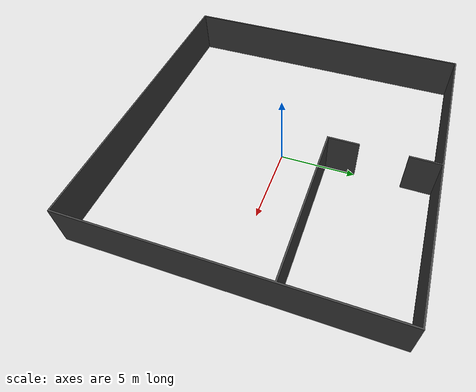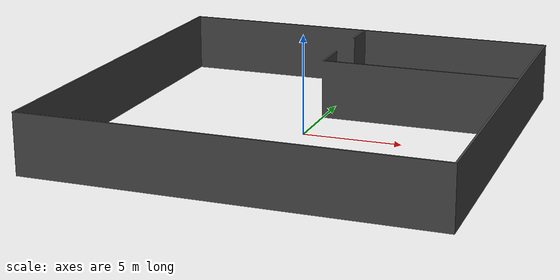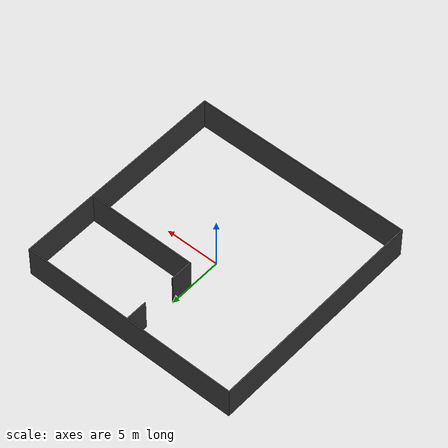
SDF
<?xml version='1.0'?>
<sdf version="1.7">
    <model name="walls_with_one_room">
        <pose>0 0 0 0 0 0</pose>
        <self_collide>false</self_collide>
        <!-- BASE_LINK FRAME -->
        <link name="walls_base">
            <pose>0 0 0 0 0 0</pose>
            <collision name="walls_base_collision">
                <pose>0 0 0 0 0 0</pose>
                <geometry>
                    <mesh>
                        <scale>1 1 1</scale>
                        <uri>meshes/walls_with_one_room.dae</uri>
                    </mesh>
                </geometry>
            </collision>
            <visual name="walls_base_visual">
                <pose>0 0 0 0 0 0</pose>
                <geometry>
                    <mesh>
                        <scale>1 1 1</scale>
                        <uri>meshes/walls_with_one_room.dae</uri>
                    </mesh>
                </geometry>
            </visual>
        </link>
        <static>1</static>
    </model>
</sdf>
